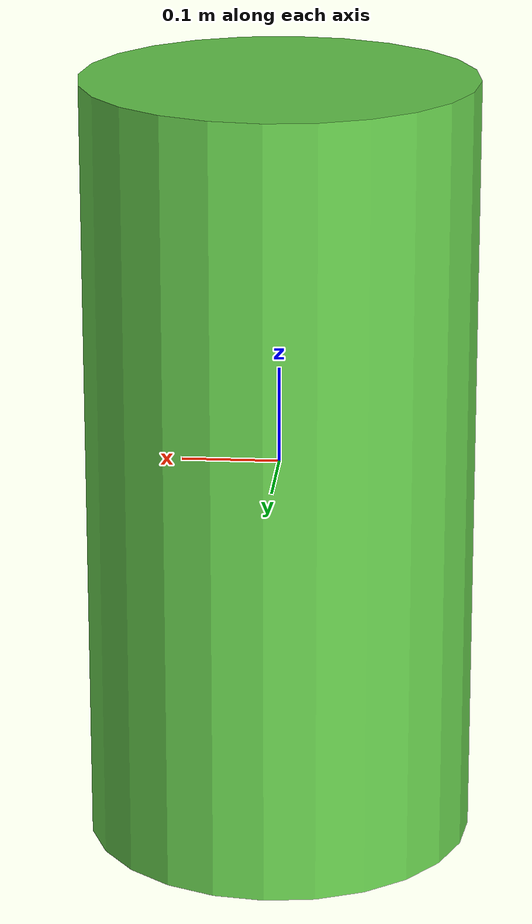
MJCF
<!-- 基础障碍几何体：圆柱（static，无 joint，有碰撞）。
     基础尺寸：半径 0.2m，半高 0.4m（总高 0.8m），spawn 时通过 scale 缩放。
     颜色通过 OrcaGymScene.set_material_info 在 spawn 后覆盖。
     用于 Lesson 8 场景布景，为摄像头视频提供丰富的视觉内容。 -->
<mujoco model="obstacle_cylinder">
  <worldbody>
    <body name="obstacle_cylinder" pos="0 0 0">
      <geom name="cylinder_geom" type="cylinder" size="0.2 0.4" rgba="0.4 0.8 0.3 1"/>
    </body>
  </worldbody>
</mujoco>
